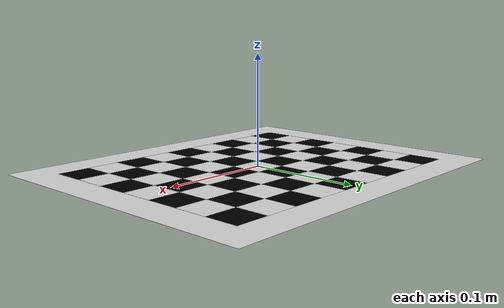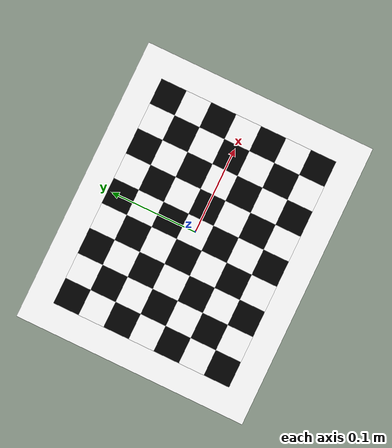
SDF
<?xml version="1.0"?>
<sdf version="1.4">
  <model name="checkerboard_9_7_0_03">
  <static>true</static>
  <link name="checkerboard_9_7_0_03_body">
      <visual name="checker_0_0">
        <pose>-0.12000000000000001 -0.09 0 0 0 0</pose>
        <geometry>
          <box>
            <size>0.03 0.03 0.0002</size>
          </box>
        </geometry>
        <material>
          <ambient>0 0 0 1</ambient>
          <diffuse>0 0 0 1</diffuse>
          <specular>0 0 0 1</specular>
          <emissive>0 0 0 1</emissive>
        </material>
      </visual>
      <visual name="checker_0_1">
        <pose>-0.12000000000000001 -0.06 0 0 0 0</pose>
        <geometry>
          <box>
            <size>0.03 0.03 0.0002</size>
          </box>
        </geometry>
        <material>
          <ambient>1 1 1 1</ambient>
          <diffuse>1 1 1 1</diffuse>
          <specular>1 1 1 1</specular>
          <emissive>1 1 1 1</emissive>
        </material>
      </visual>
      <visual name="checker_0_2">
        <pose>-0.12000000000000001 -0.03 0 0 0 0</pose>
        <geometry>
          <box>
            <size>0.03 0.03 0.0002</size>
          </box>
        </geometry>
        <material>
          <ambient>0 0 0 1</ambient>
          <diffuse>0 0 0 1</diffuse>
          <specular>0 0 0 1</specular>
          <emissive>0 0 0 1</emissive>
        </material>
      </visual>
      <visual name="checker_0_3">
        <pose>-0.12000000000000001 0.0 0 0 0 0</pose>
        <geometry>
          <box>
            <size>0.03 0.03 0.0002</size>
          </box>
        </geometry>
        <material>
          <ambient>1 1 1 1</ambient>
          <diffuse>1 1 1 1</diffuse>
          <specular>1 1 1 1</specular>
          <emissive>1 1 1 1</emissive>
        </material>
      </visual>
      <visual name="checker_0_4">
        <pose>-0.12000000000000001 0.030000000000000013 0 0 0 0</pose>
        <geometry>
          <box>
            <size>0.03 0.03 0.0002</size>
          </box>
        </geometry>
        <material>
          <ambient>0 0 0 1</ambient>
          <diffuse>0 0 0 1</diffuse>
          <specular>0 0 0 1</specular>
          <emissive>0 0 0 1</emissive>
        </material>
      </visual>
      <visual name="checker_0_5">
        <pose>-0.12000000000000001 0.059999999999999984 0 0 0 0</pose>
        <geometry>
          <box>
            <size>0.03 0.03 0.0002</size>
          </box>
        </geometry>
        <material>
          <ambient>1 1 1 1</ambient>
          <diffuse>1 1 1 1</diffuse>
          <specular>1 1 1 1</specular>
          <emissive>1 1 1 1</emissive>
        </material>
      </visual>
      <visual name="checker_0_6">
        <pose>-0.12000000000000001 0.09000000000000001 0 0 0 0</pose>
        <geometry>
          <box>
            <size>0.03 0.03 0.0002</size>
          </box>
        </geometry>
        <material>
          <ambient>0 0 0 1</ambient>
          <diffuse>0 0 0 1</diffuse>
          <specular>0 0 0 1</specular>
          <emissive>0 0 0 1</emissive>
        </material>
      </visual>
      <visual name="checker_1_0">
        <pose>-0.09000000000000001 -0.09 0 0 0 0</pose>
        <geometry>
          <box>
            <size>0.03 0.03 0.0002</size>
          </box>
        </geometry>
        <material>
          <ambient>1 1 1 1</ambient>
          <diffuse>1 1 1 1</diffuse>
          <specular>1 1 1 1</specular>
          <emissive>1 1 1 1</emissive>
        </material>
      </visual>
      <visual name="checker_1_1">
        <pose>-0.09000000000000001 -0.06 0 0 0 0</pose>
        <geometry>
          <box>
            <size>0.03 0.03 0.0002</size>
          </box>
        </geometry>
        <material>
          <ambient>0 0 0 1</ambient>
          <diffuse>0 0 0 1</diffuse>
          <specular>0 0 0 1</specular>
          <emissive>0 0 0 1</emissive>
        </material>
      </visual>
      <visual name="checker_1_2">
        <pose>-0.09000000000000001 -0.03 0 0 0 0</pose>
        <geometry>
          <box>
            <size>0.03 0.03 0.0002</size>
          </box>
        </geometry>
        <material>
          <ambient>1 1 1 1</ambient>
          <diffuse>1 1 1 1</diffuse>
          <specular>1 1 1 1</specular>
          <emissive>1 1 1 1</emissive>
        </material>
      </visual>
      <visual name="checker_1_3">
        <pose>-0.09000000000000001 0.0 0 0 0 0</pose>
        <geometry>
          <box>
            <size>0.03 0.03 0.0002</size>
          </box>
        </geometry>
        <material>
          <ambient>0 0 0 1</ambient>
          <diffuse>0 0 0 1</diffuse>
          <specular>0 0 0 1</specular>
          <emissive>0 0 0 1</emissive>
        </material>
      </visual>
      <visual name="checker_1_4">
        <pose>-0.09000000000000001 0.030000000000000013 0 0 0 0</pose>
        <geometry>
          <box>
            <size>0.03 0.03 0.0002</size>
          </box>
        </geometry>
        <material>
          <ambient>1 1 1 1</ambient>
          <diffuse>1 1 1 1</diffuse>
          <specular>1 1 1 1</specular>
          <emissive>1 1 1 1</emissive>
        </material>
      </visual>
      <visual name="checker_1_5">
        <pose>-0.09000000000000001 0.059999999999999984 0 0 0 0</pose>
        <geometry>
          <box>
            <size>0.03 0.03 0.0002</size>
          </box>
        </geometry>
        <material>
          <ambient>0 0 0 1</ambient>
          <diffuse>0 0 0 1</diffuse>
          <specular>0 0 0 1</specular>
          <emissive>0 0 0 1</emissive>
        </material>
      </visual>
      <visual name="checker_1_6">
        <pose>-0.09000000000000001 0.09000000000000001 0 0 0 0</pose>
        <geometry>
          <box>
            <size>0.03 0.03 0.0002</size>
          </box>
        </geometry>
        <material>
          <ambient>1 1 1 1</ambient>
          <diffuse>1 1 1 1</diffuse>
          <specular>1 1 1 1</specular>
          <emissive>1 1 1 1</emissive>
        </material>
      </visual>
      <visual name="checker_2_0">
        <pose>-0.06000000000000001 -0.09 0 0 0 0</pose>
        <geometry>
          <box>
            <size>0.03 0.03 0.0002</size>
          </box>
        </geometry>
        <material>
          <ambient>0 0 0 1</ambient>
          <diffuse>0 0 0 1</diffuse>
          <specular>0 0 0 1</specular>
          <emissive>0 0 0 1</emissive>
        </material>
      </visual>
      <visual name="checker_2_1">
        <pose>-0.06000000000000001 -0.06 0 0 0 0</pose>
        <geometry>
          <box>
            <size>0.03 0.03 0.0002</size>
          </box>
        </geometry>
        <material>
          <ambient>1 1 1 1</ambient>
          <diffuse>1 1 1 1</diffuse>
          <specular>1 1 1 1</specular>
          <emissive>1 1 1 1</emissive>
        </material>
      </visual>
      <visual name="checker_2_2">
        <pose>-0.06000000000000001 -0.03 0 0 0 0</pose>
        <geometry>
          <box>
            <size>0.03 0.03 0.0002</size>
          </box>
        </geometry>
        <material>
          <ambient>0 0 0 1</ambient>
          <diffuse>0 0 0 1</diffuse>
          <specular>0 0 0 1</specular>
          <emissive>0 0 0 1</emissive>
        </material>
      </visual>
      <visual name="checker_2_3">
        <pose>-0.06000000000000001 0.0 0 0 0 0</pose>
        <geometry>
          <box>
            <size>0.03 0.03 0.0002</size>
          </box>
        </geometry>
        <material>
          <ambient>1 1 1 1</ambient>
          <diffuse>1 1 1 1</diffuse>
          <specular>1 1 1 1</specular>
          <emissive>1 1 1 1</emissive>
        </material>
      </visual>
      <visual name="checker_2_4">
        <pose>-0.06000000000000001 0.030000000000000013 0 0 0 0</pose>
        <geometry>
          <box>
            <size>0.03 0.03 0.0002</size>
          </box>
        </geometry>
        <material>
          <ambient>0 0 0 1</ambient>
          <diffuse>0 0 0 1</diffuse>
          <specular>0 0 0 1</specular>
          <emissive>0 0 0 1</emissive>
        </material>
      </visual>
      <visual name="checker_2_5">
        <pose>-0.06000000000000001 0.059999999999999984 0 0 0 0</pose>
        <geometry>
          <box>
            <size>0.03 0.03 0.0002</size>
          </box>
        </geometry>
        <material>
          <ambient>1 1 1 1</ambient>
          <diffuse>1 1 1 1</diffuse>
          <specular>1 1 1 1</specular>
          <emissive>1 1 1 1</emissive>
        </material>
      </visual>
      <visual name="checker_2_6">
        <pose>-0.06000000000000001 0.09000000000000001 0 0 0 0</pose>
        <geometry>
          <box>
            <size>0.03 0.03 0.0002</size>
          </box>
        </geometry>
        <material>
          <ambient>0 0 0 1</ambient>
          <diffuse>0 0 0 1</diffuse>
          <specular>0 0 0 1</specular>
          <emissive>0 0 0 1</emissive>
        </material>
      </visual>
      <visual name="checker_3_0">
        <pose>-0.030000000000000013 -0.09 0 0 0 0</pose>
        <geometry>
          <box>
            <size>0.03 0.03 0.0002</size>
          </box>
        </geometry>
        <material>
          <ambient>1 1 1 1</ambient>
          <diffuse>1 1 1 1</diffuse>
          <specular>1 1 1 1</specular>
          <emissive>1 1 1 1</emissive>
        </material>
      </visual>
      <visual name="checker_3_1">
        <pose>-0.030000000000000013 -0.06 0 0 0 0</pose>
        <geometry>
          <box>
            <size>0.03 0.03 0.0002</size>
          </box>
        </geometry>
        <material>
          <ambient>0 0 0 1</ambient>
          <diffuse>0 0 0 1</diffuse>
          <specular>0 0 0 1</specular>
          <emissive>0 0 0 1</emissive>
        </material>
      </visual>
      <visual name="checker_3_2">
        <pose>-0.030000000000000013 -0.03 0 0 0 0</pose>
        <geometry>
          <box>
            <size>0.03 0.03 0.0002</size>
          </box>
        </geometry>
        <material>
          <ambient>1 1 1 1</ambient>
          <diffuse>1 1 1 1</diffuse>
          <specular>1 1 1 1</specular>
          <emissive>1 1 1 1</emissive>
        </material>
      </visual>
      <visual name="checker_3_3">
        <pose>-0.030000000000000013 0.0 0 0 0 0</pose>
        <geometry>
          <box>
            <size>0.03 0.03 0.0002</size>
          </box>
        </geometry>
        <material>
          <ambient>0 0 0 1</ambient>
          <diffuse>0 0 0 1</diffuse>
          <specular>0 0 0 1</specular>
          <emissive>0 0 0 1</emissive>
        </material>
      </visual>
      <visual name="checker_3_4">
        <pose>-0.030000000000000013 0.030000000000000013 0 0 0 0</pose>
        <geometry>
          <box>
            <size>0.03 0.03 0.0002</size>
          </box>
        </geometry>
        <material>
          <ambient>1 1 1 1</ambient>
          <diffuse>1 1 1 1</diffuse>
          <specular>1 1 1 1</specular>
          <emissive>1 1 1 1</emissive>
        </material>
      </visual>
      <visual name="checker_3_5">
        <pose>-0.030000000000000013 0.059999999999999984 0 0 0 0</pose>
        <geometry>
          <box>
            <size>0.03 0.03 0.0002</size>
          </box>
        </geometry>
        <material>
          <ambient>0 0 0 1</ambient>
          <diffuse>0 0 0 1</diffuse>
          <specular>0 0 0 1</specular>
          <emissive>0 0 0 1</emissive>
        </material>
      </visual>
      <visual name="checker_3_6">
        <pose>-0.030000000000000013 0.09000000000000001 0 0 0 0</pose>
        <geometry>
          <box>
            <size>0.03 0.03 0.0002</size>
          </box>
        </geometry>
        <material>
          <ambient>1 1 1 1</ambient>
          <diffuse>1 1 1 1</diffuse>
          <specular>1 1 1 1</specular>
          <emissive>1 1 1 1</emissive>
        </material>
      </visual>
      <visual name="checker_4_0">
        <pose>0.0 -0.09 0 0 0 0</pose>
        <geometry>
          <box>
            <size>0.03 0.03 0.0002</size>
          </box>
        </geometry>
        <material>
          <ambient>0 0 0 1</ambient>
          <diffuse>0 0 0 1</diffuse>
          <specular>0 0 0 1</specular>
          <emissive>0 0 0 1</emissive>
        </material>
      </visual>
      <visual name="checker_4_1">
        <pose>0.0 -0.06 0 0 0 0</pose>
        <geometry>
          <box>
            <size>0.03 0.03 0.0002</size>
          </box>
        </geometry>
        <material>
          <ambient>1 1 1 1</ambient>
          <diffuse>1 1 1 1</diffuse>
          <specular>1 1 1 1</specular>
          <emissive>1 1 1 1</emissive>
        </material>
      </visual>
      <visual name="checker_4_2">
        <pose>0.0 -0.03 0 0 0 0</pose>
        <geometry>
          <box>
            <size>0.03 0.03 0.0002</size>
          </box>
        </geometry>
        <material>
          <ambient>0 0 0 1</ambient>
          <diffuse>0 0 0 1</diffuse>
          <specular>0 0 0 1</specular>
          <emissive>0 0 0 1</emissive>
        </material>
      </visual>
      <visual name="checker_4_3">
        <pose>0.0 0.0 0 0 0 0</pose>
        <geometry>
          <box>
            <size>0.03 0.03 0.0002</size>
          </box>
        </geometry>
        <material>
          <ambient>1 1 1 1</ambient>
          <diffuse>1 1 1 1</diffuse>
          <specular>1 1 1 1</specular>
          <emissive>1 1 1 1</emissive>
        </material>
      </visual>
      <visual name="checker_4_4">
        <pose>0.0 0.030000000000000013 0 0 0 0</pose>
        <geometry>
          <box>
            <size>0.03 0.03 0.0002</size>
          </box>
        </geometry>
        <material>
          <ambient>0 0 0 1</ambient>
          <diffuse>0 0 0 1</diffuse>
          <specular>0 0 0 1</specular>
          <emissive>0 0 0 1</emissive>
        </material>
      </visual>
      <visual name="checker_4_5">
        <pose>0.0 0.059999999999999984 0 0 0 0</pose>
        <geometry>
          <box>
            <size>0.03 0.03 0.0002</size>
          </box>
        </geometry>
        <material>
          <ambient>1 1 1 1</ambient>
          <diffuse>1 1 1 1</diffuse>
          <specular>1 1 1 1</specular>
          <emissive>1 1 1 1</emissive>
        </material>
      </visual>
      <visual name="checker_4_6">
        <pose>0.0 0.09000000000000001 0 0 0 0</pose>
        <geometry>
          <box>
            <size>0.03 0.03 0.0002</size>
          </box>
        </geometry>
        <material>
          <ambient>0 0 0 1</ambient>
          <diffuse>0 0 0 1</diffuse>
          <specular>0 0 0 1</specular>
          <emissive>0 0 0 1</emissive>
        </material>
      </visual>
      <visual name="checker_5_0">
        <pose>0.02999999999999997 -0.09 0 0 0 0</pose>
        <geometry>
          <box>
            <size>0.03 0.03 0.0002</size>
          </box>
        </geometry>
        <material>
          <ambient>1 1 1 1</ambient>
          <diffuse>1 1 1 1</diffuse>
          <specular>1 1 1 1</specular>
          <emissive>1 1 1 1</emissive>
        </material>
      </visual>
      <visual name="checker_5_1">
        <pose>0.02999999999999997 -0.06 0 0 0 0</pose>
        <geometry>
          <box>
            <size>0.03 0.03 0.0002</size>
          </box>
        </geometry>
        <material>
          <ambient>0 0 0 1</ambient>
          <diffuse>0 0 0 1</diffuse>
          <specular>0 0 0 1</specular>
          <emissive>0 0 0 1</emissive>
        </material>
      </visual>
      <visual name="checker_5_2">
        <pose>0.02999999999999997 -0.03 0 0 0 0</pose>
        <geometry>
          <box>
            <size>0.03 0.03 0.0002</size>
          </box>
        </geometry>
        <material>
          <ambient>1 1 1 1</ambient>
          <diffuse>1 1 1 1</diffuse>
          <specular>1 1 1 1</specular>
          <emissive>1 1 1 1</emissive>
        </material>
      </visual>
      <visual name="checker_5_3">
        <pose>0.02999999999999997 0.0 0 0 0 0</pose>
        <geometry>
          <box>
            <size>0.03 0.03 0.0002</size>
          </box>
        </geometry>
        <material>
          <ambient>0 0 0 1</ambient>
          <diffuse>0 0 0 1</diffuse>
          <specular>0 0 0 1</specular>
          <emissive>0 0 0 1</emissive>
        </material>
      </visual>
      <visual name="checker_5_4">
        <pose>0.02999999999999997 0.030000000000000013 0 0 0 0</pose>
        <geometry>
          <box>
            <size>0.03 0.03 0.0002</size>
          </box>
        </geometry>
        <material>
          <ambient>1 1 1 1</ambient>
          <diffuse>1 1 1 1</diffuse>
          <specular>1 1 1 1</specular>
          <emissive>1 1 1 1</emissive>
        </material>
      </visual>
      <visual name="checker_5_5">
        <pose>0.02999999999999997 0.059999999999999984 0 0 0 0</pose>
        <geometry>
          <box>
            <size>0.03 0.03 0.0002</size>
          </box>
        </geometry>
        <material>
          <ambient>0 0 0 1</ambient>
          <diffuse>0 0 0 1</diffuse>
          <specular>0 0 0 1</specular>
          <emissive>0 0 0 1</emissive>
        </material>
      </visual>
      <visual name="checker_5_6">
        <pose>0.02999999999999997 0.09000000000000001 0 0 0 0</pose>
        <geometry>
          <box>
            <size>0.03 0.03 0.0002</size>
          </box>
        </geometry>
        <material>
          <ambient>1 1 1 1</ambient>
          <diffuse>1 1 1 1</diffuse>
          <specular>1 1 1 1</specular>
          <emissive>1 1 1 1</emissive>
        </material>
      </visual>
      <visual name="checker_6_0">
        <pose>0.06 -0.09 0 0 0 0</pose>
        <geometry>
          <box>
            <size>0.03 0.03 0.0002</size>
          </box>
        </geometry>
        <material>
          <ambient>0 0 0 1</ambient>
          <diffuse>0 0 0 1</diffuse>
          <specular>0 0 0 1</specular>
          <emissive>0 0 0 1</emissive>
        </material>
      </visual>
      <visual name="checker_6_1">
        <pose>0.06 -0.06 0 0 0 0</pose>
        <geometry>
          <box>
            <size>0.03 0.03 0.0002</size>
          </box>
        </geometry>
        <material>
          <ambient>1 1 1 1</ambient>
          <diffuse>1 1 1 1</diffuse>
          <specular>1 1 1 1</specular>
          <emissive>1 1 1 1</emissive>
        </material>
      </visual>
      <visual name="checker_6_2">
        <pose>0.06 -0.03 0 0 0 0</pose>
        <geometry>
          <box>
            <size>0.03 0.03 0.0002</size>
          </box>
        </geometry>
        <material>
          <ambient>0 0 0 1</ambient>
          <diffuse>0 0 0 1</diffuse>
          <specular>0 0 0 1</specular>
          <emissive>0 0 0 1</emissive>
        </material>
      </visual>
      <visual name="checker_6_3">
        <pose>0.06 0.0 0 0 0 0</pose>
        <geometry>
          <box>
            <size>0.03 0.03 0.0002</size>
          </box>
        </geometry>
        <material>
          <ambient>1 1 1 1</ambient>
          <diffuse>1 1 1 1</diffuse>
          <specular>1 1 1 1</specular>
          <emissive>1 1 1 1</emissive>
        </material>
      </visual>
      <visual name="checker_6_4">
        <pose>0.06 0.030000000000000013 0 0 0 0</pose>
        <geometry>
          <box>
            <size>0.03 0.03 0.0002</size>
          </box>
        </geometry>
        <material>
          <ambient>0 0 0 1</ambient>
          <diffuse>0 0 0 1</diffuse>
          <specular>0 0 0 1</specular>
          <emissive>0 0 0 1</emissive>
        </material>
      </visual>
      <visual name="checker_6_5">
        <pose>0.06 0.059999999999999984 0 0 0 0</pose>
        <geometry>
          <box>
            <size>0.03 0.03 0.0002</size>
          </box>
        </geometry>
        <material>
          <ambient>1 1 1 1</ambient>
          <diffuse>1 1 1 1</diffuse>
          <specular>1 1 1 1</specular>
          <emissive>1 1 1 1</emissive>
        </material>
      </visual>
      <visual name="checker_6_6">
        <pose>0.06 0.09000000000000001 0 0 0 0</pose>
        <geometry>
          <box>
            <size>0.03 0.03 0.0002</size>
          </box>
        </geometry>
        <material>
          <ambient>0 0 0 1</ambient>
          <diffuse>0 0 0 1</diffuse>
          <specular>0 0 0 1</specular>
          <emissive>0 0 0 1</emissive>
        </material>
      </visual>
      <visual name="checker_7_0">
        <pose>0.08999999999999997 -0.09 0 0 0 0</pose>
        <geometry>
          <box>
            <size>0.03 0.03 0.0002</size>
          </box>
        </geometry>
        <material>
          <ambient>1 1 1 1</ambient>
          <diffuse>1 1 1 1</diffuse>
          <specular>1 1 1 1</specular>
          <emissive>1 1 1 1</emissive>
        </material>
      </visual>
      <visual name="checker_7_1">
        <pose>0.08999999999999997 -0.06 0 0 0 0</pose>
        <geometry>
          <box>
            <size>0.03 0.03 0.0002</size>
          </box>
        </geometry>
        <material>
          <ambient>0 0 0 1</ambient>
          <diffuse>0 0 0 1</diffuse>
          <specular>0 0 0 1</specular>
          <emissive>0 0 0 1</emissive>
        </material>
      </visual>
      <visual name="checker_7_2">
        <pose>0.08999999999999997 -0.03 0 0 0 0</pose>
        <geometry>
          <box>
            <size>0.03 0.03 0.0002</size>
          </box>
        </geometry>
        <material>
          <ambient>1 1 1 1</ambient>
          <diffuse>1 1 1 1</diffuse>
          <specular>1 1 1 1</specular>
          <emissive>1 1 1 1</emissive>
        </material>
      </visual>
      <visual name="checker_7_3">
        <pose>0.08999999999999997 0.0 0 0 0 0</pose>
        <geometry>
          <box>
            <size>0.03 0.03 0.0002</size>
          </box>
        </geometry>
        <material>
          <ambient>0 0 0 1</ambient>
          <diffuse>0 0 0 1</diffuse>
          <specular>0 0 0 1</specular>
          <emissive>0 0 0 1</emissive>
        </material>
      </visual>
      <visual name="checker_7_4">
        <pose>0.08999999999999997 0.030000000000000013 0 0 0 0</pose>
        <geometry>
          <box>
            <size>0.03 0.03 0.0002</size>
          </box>
        </geometry>
        <material>
          <ambient>1 1 1 1</ambient>
          <diffuse>1 1 1 1</diffuse>
          <specular>1 1 1 1</specular>
          <emissive>1 1 1 1</emissive>
        </material>
      </visual>
      <visual name="checker_7_5">
        <pose>0.08999999999999997 0.059999999999999984 0 0 0 0</pose>
        <geometry>
          <box>
            <size>0.03 0.03 0.0002</size>
          </box>
        </geometry>
        <material>
          <ambient>0 0 0 1</ambient>
          <diffuse>0 0 0 1</diffuse>
          <specular>0 0 0 1</specular>
          <emissive>0 0 0 1</emissive>
        </material>
      </visual>
      <visual name="checker_7_6">
        <pose>0.08999999999999997 0.09000000000000001 0 0 0 0</pose>
        <geometry>
          <box>
            <size>0.03 0.03 0.0002</size>
          </box>
        </geometry>
        <material>
          <ambient>1 1 1 1</ambient>
          <diffuse>1 1 1 1</diffuse>
          <specular>1 1 1 1</specular>
          <emissive>1 1 1 1</emissive>
        </material>
      </visual>
      <visual name="checker_8_0">
        <pose>0.12 -0.09 0 0 0 0</pose>
        <geometry>
          <box>
            <size>0.03 0.03 0.0002</size>
          </box>
        </geometry>
        <material>
          <ambient>0 0 0 1</ambient>
          <diffuse>0 0 0 1</diffuse>
          <specular>0 0 0 1</specular>
          <emissive>0 0 0 1</emissive>
        </material>
      </visual>
      <visual name="checker_8_1">
        <pose>0.12 -0.06 0 0 0 0</pose>
        <geometry>
          <box>
            <size>0.03 0.03 0.0002</size>
          </box>
        </geometry>
        <material>
          <ambient>1 1 1 1</ambient>
          <diffuse>1 1 1 1</diffuse>
          <specular>1 1 1 1</specular>
          <emissive>1 1 1 1</emissive>
        </material>
      </visual>
      <visual name="checker_8_2">
        <pose>0.12 -0.03 0 0 0 0</pose>
        <geometry>
          <box>
            <size>0.03 0.03 0.0002</size>
          </box>
        </geometry>
        <material>
          <ambient>0 0 0 1</ambient>
          <diffuse>0 0 0 1</diffuse>
          <specular>0 0 0 1</specular>
          <emissive>0 0 0 1</emissive>
        </material>
      </visual>
      <visual name="checker_8_3">
        <pose>0.12 0.0 0 0 0 0</pose>
        <geometry>
          <box>
            <size>0.03 0.03 0.0002</size>
          </box>
        </geometry>
        <material>
          <ambient>1 1 1 1</ambient>
          <diffuse>1 1 1 1</diffuse>
          <specular>1 1 1 1</specular>
          <emissive>1 1 1 1</emissive>
        </material>
      </visual>
      <visual name="checker_8_4">
        <pose>0.12 0.030000000000000013 0 0 0 0</pose>
        <geometry>
          <box>
            <size>0.03 0.03 0.0002</size>
          </box>
        </geometry>
        <material>
          <ambient>0 0 0 1</ambient>
          <diffuse>0 0 0 1</diffuse>
          <specular>0 0 0 1</specular>
          <emissive>0 0 0 1</emissive>
        </material>
      </visual>
      <visual name="checker_8_5">
        <pose>0.12 0.059999999999999984 0 0 0 0</pose>
        <geometry>
          <box>
            <size>0.03 0.03 0.0002</size>
          </box>
        </geometry>
        <material>
          <ambient>1 1 1 1</ambient>
          <diffuse>1 1 1 1</diffuse>
          <specular>1 1 1 1</specular>
          <emissive>1 1 1 1</emissive>
        </material>
      </visual>
      <visual name="checker_8_6">
        <pose>0.12 0.09000000000000001 0 0 0 0</pose>
        <geometry>
          <box>
            <size>0.03 0.03 0.0002</size>
          </box>
        </geometry>
        <material>
          <ambient>0 0 0 1</ambient>
          <diffuse>0 0 0 1</diffuse>
          <specular>0 0 0 1</specular>
          <emissive>0 0 0 1</emissive>
        </material>
      </visual>
      <visual name="checker_backdrop">
        <pose>0 0 0 0 0 0</pose>
        <geometry>
          <box>
            <size>0.32999999999999996 0.27 0.0001</size>
          </box>
        </geometry>
        <material>
          <ambient>1 1 1 1</ambient>
          <diffuse>1 1 1 1</diffuse>
          <specular>1 1 1 1</specular>
          <emissive>1 1 1 1</emissive>
        </material>
      </visual>
    </link>
  </model>
</sdf>
